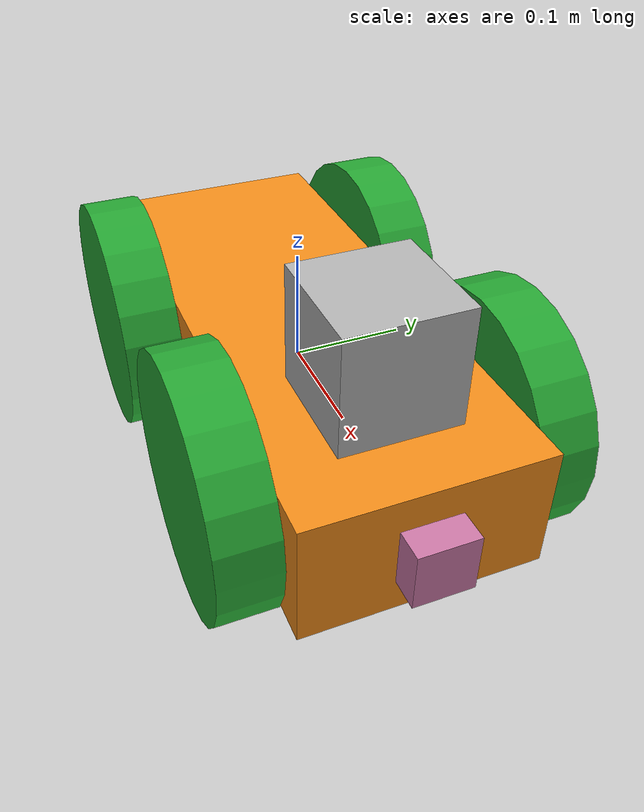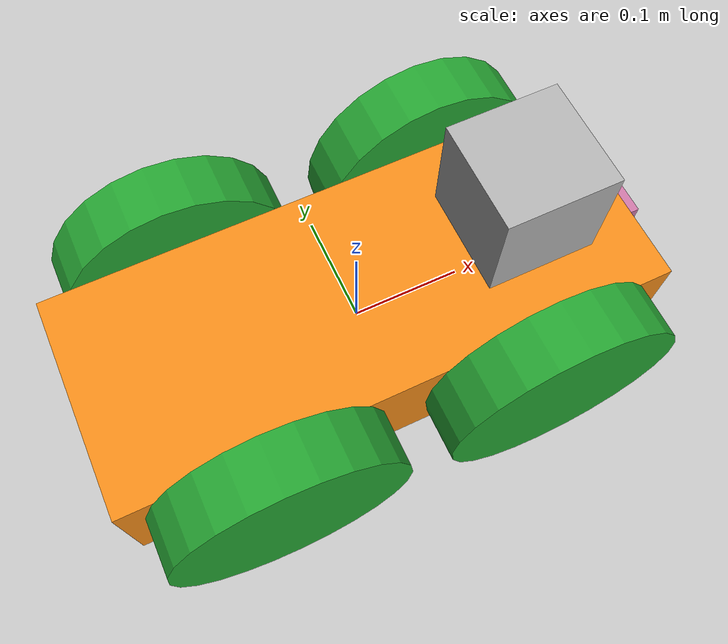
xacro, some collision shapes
<robot name="my_robot" xmlns:xacro="http://www.ros.org/wiki/xacro">
<xacro:include filename="$(find my_robot)/urdf/my_robot.gazebo" />

  <link name="robot_footprint"></link>

  <joint name="robot_footprint_joint" type="fixed">
    <origin xyz="0 0 0" rpy="0 0 0" />
    <parent link="robot_footprint"/>
    <child link="chassis" />
  </joint>

  <link name='chassis'>
    <pose>0 0 0.1075 0 0 0</pose>

    <inertial>
      <mass value="15.0"/>
      <origin xyz="0.0 0 0" rpy=" 0 0 0"/>
      <inertia
          ixx="0.1" ixy="0" ixz="0"
          iyy="0.1" iyz="0"
          izz="0.1"
      />
    </inertial>

    <collision name='collision'>
      <origin xyz="0 0 0" rpy=" 0 0 0"/>
      <geometry>
        <box size=".5 .2 0.1075"/>
      </geometry>
    </collision>

    <visual name='chassis_visual'>
      <origin xyz="0 0 0" rpy=" 0 0 0"/>
      <geometry>
        <box size=".5 .2 0.1075"/>
      </geometry>
    </visual>
  </link>

  <link name='rear_left_wheel'>
      <pose>0 0 0.1075 0 0 0</pose>

      <inertial>
        <mass value="5.0"/>
        <origin xyz="0.0 0 0" rpy=" 0 1.5707 1.5707"/>
        <inertia
            ixx="0.1" ixy="0" ixz="0"
            iyy="0.1" iyz="0"
            izz="0.1"
        />
      </inertial>

      <collision name='rear_left_wheel_collision'>
        <origin xyz="0.0 0 0" rpy=" 0 1.5707 1.5707"/>
        <geometry>
          <cylinder radius="0.1075" length="0.05"/>
        </geometry>
      </collision>

      <visual name='rear_left_wheel'>
        <origin xyz="0.0 0 0" rpy=" 0 1.5707 1.5707"/>
        <geometry>
          <cylinder radius="0.1075" length="0.05"/>
        </geometry>
      </visual>
  </link>

  <joint type="continuous" name="rear_left_wheel_hinge">
      <origin xyz="-0.126 -0.126 0" rpy="0 0 0"/>
      <child link="rear_left_wheel"/>
      <parent link="chassis"/>
      <axis xyz="0 1 0" rpy="0 0 0"/>
      <limit effort="10000" velocity="1000"/>
      <dynamics damping="1.0" friction="1.0"/>
  </joint>

  <link name='front_left_wheel'>
      <pose>0 0 0.1075 0 0 0</pose>

      <inertial>
        <mass value="5.0"/>
        <origin xyz="0.0 0 0" rpy=" 0 1.5707 1.5707"/>
        <inertia
            ixx="0.1" ixy="0" ixz="0"
            iyy="0.1" iyz="0"
            izz="0.1"
        />
      </inertial>

      <collision name='front_left_wheel_collision'>
        <origin xyz="0.0 0 0" rpy=" 0 1.5707 1.5707"/>
        <geometry>
          <cylinder radius="0.1075" length="0.05"/>
        </geometry>
      </collision>

      <visual name='front_left_wheel_visual'>
        <origin xyz="0.0 0 0" rpy=" 0 1.5707 1.5707"/>
        <geometry>
          <cylinder radius="0.1075" length="0.05"/>
        </geometry>
      </visual>
  </link>

    <joint type="continuous" name="front_left_wheel_hinge">
      <origin xyz="0.126 -0.126 0" rpy="0 0 0"/>
      <child link="front_left_wheel"/>
      <parent link="chassis"/>
      <axis xyz="0 1 0" rpy="0 0 0"/>
      <limit effort="10000" velocity="1000"/>
      <dynamics damping="1.0" friction="1.0"/>
    </joint>

  <link name='rear_right_wheel'>
      <pose>0 0 0.1075 0 0 0</pose>

      <inertial>
        <mass value="5.0"/>
        <origin xyz="0.0 0 0" rpy=" 0 1.5707 1.5707"/>
        <inertia
            ixx="0.1" ixy="0" ixz="0"
            iyy="0.1" iyz="0"
            izz="0.1"
        />
      </inertial>

      <collision name='rear_right_wheel_collision'>
        <origin xyz="0.0 0 0" rpy=" 0 1.5707 1.5707"/>
        <geometry>
          <cylinder radius="0.1075" length="0.05"/>
        </geometry>
      </collision>

      <visual name='rear_right_wheel_visual'>
        <origin xyz="0.0 0 0" rpy=" 0 1.5707 1.5707"/>
        <geometry>
          <cylinder radius="0.1075" length="0.05"/>
        </geometry>
      </visual>
  </link>

    <joint type="continuous" name="rear_right_wheel_hinge">
      <origin xyz="-0.126 0.126 0" rpy="0 0 0"/>
      <child link="rear_right_wheel"/>
      <parent link="chassis"/>
      <axis xyz="0 1 0" rpy="0 0 0"/>
      <limit effort="10000" velocity="1000"/>
      <dynamics damping="1.0" friction="1.0"/>
    </joint>

  <link name='front_right_wheel'>
      <pose>0 0 0.1075 0 0 0</pose>

      <inertial>
        <mass value="5.0"/>
        <origin xyz="0.0 0 0" rpy=" 0 1.5707 1.5707"/>
        <inertia
            ixx="0.1" ixy="0" ixz="0"
            iyy="0.1" iyz="0"
            izz="0.1"
        />
      </inertial>

      <collision name='front_right_wheel_collision'>
        <origin xyz="0.0 0 0" rpy=" 0 1.5707 1.5707"/>
        <geometry>
          <cylinder radius="0.1075" length="0.05"/>
        </geometry>
      </collision>

      <visual name='front_right_wheel_visual'>
        <origin xyz="0.0 0 0" rpy=" 0 1.5707 1.5707"/>
        <geometry>
          <cylinder radius="0.1075" length="0.05"/>
        </geometry>
      </visual>
  </link>

    <joint type="continuous" name="front_right_wheel_hinge">
      <origin xyz="0.126 0.126 0" rpy="0 0 0"/>
      <child link="front_right_wheel"/>
      <parent link="chassis"/>
      <axis xyz="0 1 0" rpy="0 0 0"/>
      <limit effort="10000" velocity="1000"/>
      <dynamics damping="1.0" friction="1.0"/>
    </joint>

  <gazebo reference="chassis">
    <material>Gazebo/Orange</material>
  </gazebo>

  <gazebo reference="rear_left_wheel">
    <material>Gazebo/Green</material>
  </gazebo>

  <gazebo reference="front_left_wheel">
    <material>Gazebo/Green</material>
  </gazebo>

  <gazebo reference="rear_right_wheel">
    <material>Gazebo/Green</material>
  </gazebo>

  <gazebo reference="front_right_wheel">
    <material>Gazebo/Green</material>
  </gazebo>

  <link name='camera'>

    <inertial>
      <mass value="0.1"/>
      <origin xyz="0.0 0 0" rpy=" 0 0 0"/>
      <inertia
          ixx="1e-6" ixy="0" ixz="0"
          iyy="1e-6" iyz="0"
          izz="1e-6"
      />
    </inertial>

    <collision name='camera_collision'>
      <origin xyz="0.0 0 0" rpy=" 0 0 0"/>
      <geometry>
        <box size="0.05 0.05 0.05"/>
      </geometry>
    </collision>

    <visual name='camera_visual'>
      <origin xyz="0.0 0 0" rpy=" 0 0 0"/>
      <geometry>
        <box size="0.05 0.05 0.05"/>
      </geometry>
    </visual>
  </link>

  <joint type="fixed" name="camera_joint">
    <origin xyz="0.25 0 0" rpy="0 0 0"/>
    <child link="camera"/>
    <parent link="chassis"/>
    <axis xyz="0 1 0" rpy="0 0 0"/>
  </joint>

  <link name='hokuyo'>

    <inertial>
      <mass value="1e-5"/>
      <origin xyz="0.0 0 0" rpy=" 0 0 0"/>
      <inertia
          ixx="1e-6" ixy="0" ixz="0"
          iyy="1e-6" iyz="0"
          izz="1e-6"
      />
    </inertial>

    <collision name='hokuyo_collision'>
      <origin xyz="0.0 0 0" rpy=" 0 0 0"/>
      <geometry>
        <box size="0.1 0.1 0.1"/>
      </geometry>
    </collision>

    <visual name='hokuyo_visual'>
      <origin xyz="0.0 0 0" rpy=" 0 0 0"/>
      <geometry>
        <mesh filename ="package://my_robot/meshes/hokuyo.dae"/>
      </geometry>
    </visual>
  </link>

  <joint type="fixed" name="hokuyo_joint">
    <origin xyz="0.15 0 0.1075" rpy="0 0 0"/>
    <child link="hokuyo"/>
    <parent link="chassis"/>
    <axis xyz="0 1 0" rpy="0 0 0"/>
  </joint>

  <link name="camera_link_optical">
  </link>

  <joint name="camera_optical_joint" type="fixed">
    <origin xyz="0 0 0" rpy="-1.5707 0 -1.5707"/>
    <parent link="camera"/>
    <child link="camera_link_optical"/>
  </joint>

</robot>
